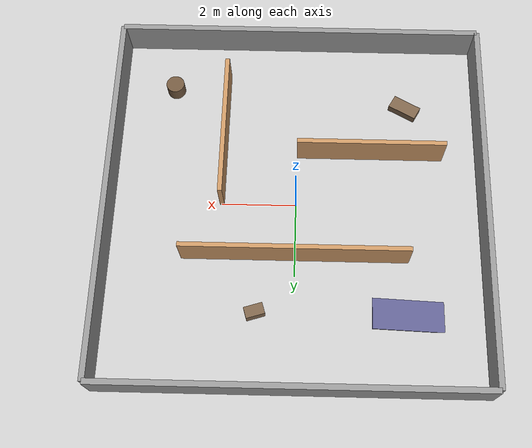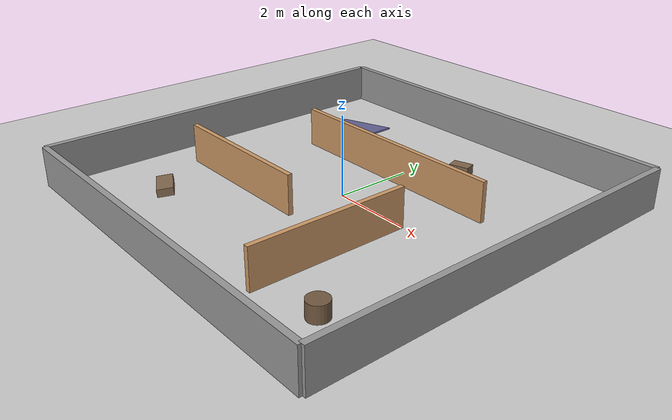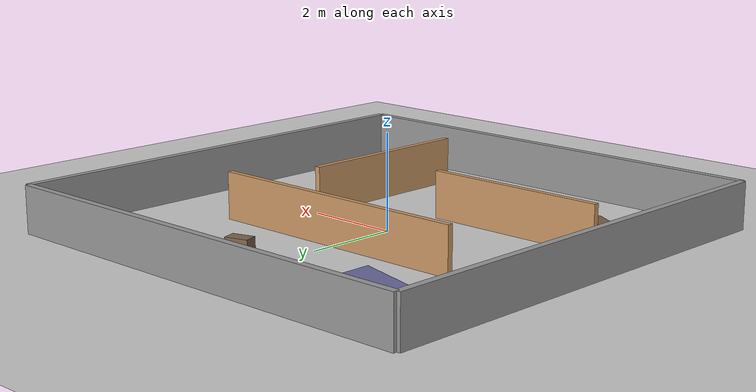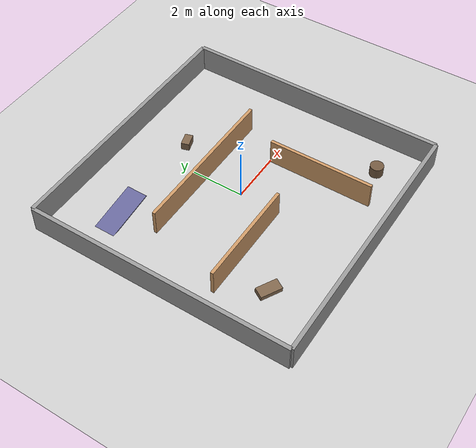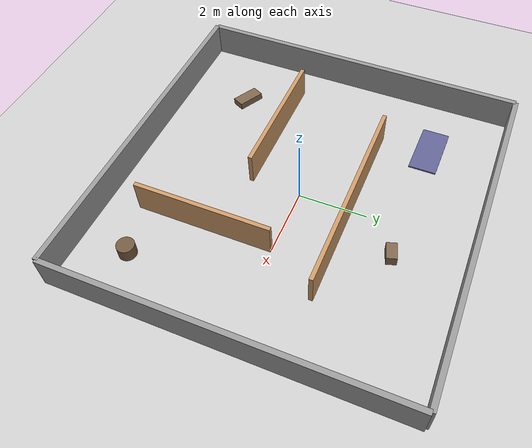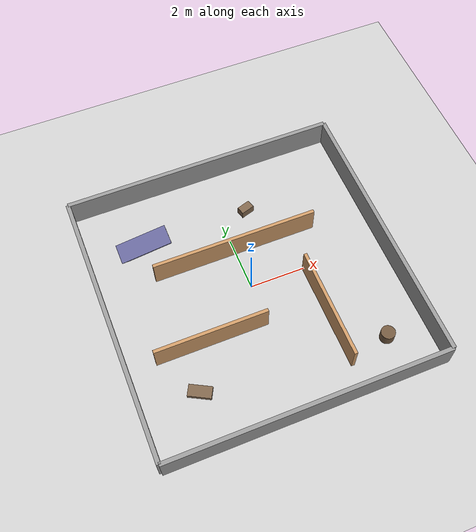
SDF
<?xml version="1.0"?>
<!--
  レスキューロボット テスト用ワールド (Gazebo Harmonic / gz sim 8)
  壁・通路・瓦礫風ブロックを配置した 10×10 m 屋内フィールド

  gz sim rescue_field.sdf
-->
<sdf version="1.9">
  <world name="rescue_field">

    <!-- ====== 必須 System Plugins (Gazebo Harmonic) ====== -->
    <plugin filename="gz-sim-physics-system"
            name="gz::sim::systems::Physics">
    </plugin>
    <plugin filename="gz-sim-user-commands-system"
            name="gz::sim::systems::UserCommands">
    </plugin>
    <plugin filename="gz-sim-scene-broadcaster-system"
            name="gz::sim::systems::SceneBroadcaster">
    </plugin>
        <!-- Sensors/IMU system: lidarはOGRE必須。MESA_GL_VERSION_OVERRIDE=3.3 で
          ソフトウェアレンダリング環境でも動作する。 -->
    <plugin filename="gz-sim-sensors-system"
            name="gz::sim::systems::Sensors">
       <render_engine>ogre</render_engine>
    </plugin>
    <plugin filename="gz-sim-imu-system"
            name="gz::sim::systems::Imu">
    </plugin>
    <plugin filename="gz-sim-contact-system"
            name="gz::sim::systems::Contact">
    </plugin>

    <!-- ====== Physics ====== -->
    <physics name="default_physics" type="ode">
      <max_step_size>0.004</max_step_size>
      <real_time_factor>1.0</real_time_factor>
      <real_time_update_rate>250</real_time_update_rate>
    </physics>

    <!-- ====== Scene ====== -->
    <scene>
      <ambient>0.4 0.4 0.4 1</ambient>
      <background>0.7 0.7 0.7 1</background>
      <shadows>true</shadows>
    </scene>

    <!-- ====== Lights ====== -->
    <light name="sun" type="directional">
      <cast_shadows>true</cast_shadows>
      <pose>0 0 10 0 0 0</pose>
      <diffuse>0.8 0.8 0.8 1</diffuse>
      <specular>0.2 0.2 0.2 1</specular>
      <attenuation>
        <range>1000</range>
        <constant>0.9</constant>
        <linear>0.01</linear>
        <quadratic>0.001</quadratic>
      </attenuation>
      <direction>-0.5 0.1 -0.9</direction>
    </light>

    <!-- ====== Ground Plane ====== -->
    <model name="ground_plane">
      <static>true</static>
      <link name="link">
        <collision name="collision">
          <geometry>
            <plane>
              <normal>0 0 1</normal>
              <size>100 100</size>
            </plane>
          </geometry>
          <surface>
            <friction>
              <ode>
                <mu>100</mu>
                <mu2>50</mu2>
              </ode>
            </friction>
          </surface>
        </collision>
        <visual name="visual">
          <geometry>
            <plane>
              <normal>0 0 1</normal>
              <size>100 100</size>
            </plane>
          </geometry>
          <material>
            <ambient>0.8 0.8 0.8 1</ambient>
            <diffuse>0.8 0.8 0.8 1</diffuse>
            <specular>0.8 0.8 0.8 1</specular>
          </material>
        </visual>
      </link>
    </model>

    <!-- ====== 外壁 ====== -->
    <!-- 北壁 -->
    <model name="wall_north">
      <static>true</static>
      <pose>0 5 0.5 0 0 0</pose>
      <link name="link">
        <collision name="collision">
          <geometry><box><size>10 0.15 1.0</size></box></geometry>
        </collision>
        <visual name="visual">
          <geometry><box><size>10 0.15 1.0</size></box></geometry>
          <material>
            <ambient>0.5 0.5 0.5 1</ambient>
            <diffuse>0.6 0.6 0.6 1</diffuse>
          </material>
        </visual>
      </link>
    </model>

    <!-- 南壁 -->
    <model name="wall_south">
      <static>true</static>
      <pose>0 -5 0.5 0 0 0</pose>
      <link name="link">
        <collision name="collision">
          <geometry><box><size>10 0.15 1.0</size></box></geometry>
        </collision>
        <visual name="visual">
          <geometry><box><size>10 0.15 1.0</size></box></geometry>
          <material>
            <ambient>0.5 0.5 0.5 1</ambient>
            <diffuse>0.6 0.6 0.6 1</diffuse>
          </material>
        </visual>
      </link>
    </model>

    <!-- 東壁 -->
    <model name="wall_east">
      <static>true</static>
      <pose>5 0 0.5 0 0 0</pose>
      <link name="link">
        <collision name="collision">
          <geometry><box><size>0.15 10 1.0</size></box></geometry>
        </collision>
        <visual name="visual">
          <geometry><box><size>0.15 10 1.0</size></box></geometry>
          <material>
            <ambient>0.5 0.5 0.5 1</ambient>
            <diffuse>0.6 0.6 0.6 1</diffuse>
          </material>
        </visual>
      </link>
    </model>

    <!-- 西壁 -->
    <model name="wall_west">
      <static>true</static>
      <pose>-5 0 0.5 0 0 0</pose>
      <link name="link">
        <collision name="collision">
          <geometry><box><size>0.15 10 1.0</size></box></geometry>
        </collision>
        <visual name="visual">
          <geometry><box><size>0.15 10 1.0</size></box></geometry>
          <material>
            <ambient>0.5 0.5 0.5 1</ambient>
            <diffuse>0.6 0.6 0.6 1</diffuse>
          </material>
        </visual>
      </link>
    </model>

    <!-- ====== 内部仕切り壁 ====== -->
    <!-- 部屋 A と B を仕切る壁（ドア開口部あり） -->
    <model name="partition_1">
      <static>true</static>
      <pose>0 1.5 0.5 0 0 0</pose>
      <link name="link">
        <collision name="collision">
          <geometry><box><size>6 0.12 1.0</size></box></geometry>
        </collision>
        <visual name="visual">
          <geometry><box><size>6 0.12 1.0</size></box></geometry>
          <material>
            <ambient>0.7 0.5 0.3 1</ambient>
            <diffuse>0.8 0.6 0.4 1</diffuse>
          </material>
        </visual>
      </link>
    </model>

    <!-- L字通路の壁 -->
    <model name="corridor_wall_1">
      <static>true</static>
      <pose>-2 -1.5 0.5 0 0 0</pose>
      <link name="link">
        <collision name="collision">
          <geometry><box><size>4 0.12 1.0</size></box></geometry>
        </collision>
        <visual name="visual">
          <geometry><box><size>4 0.12 1.0</size></box></geometry>
          <material>
            <ambient>0.7 0.5 0.3 1</ambient>
            <diffuse>0.8 0.6 0.4 1</diffuse>
          </material>
        </visual>
      </link>
    </model>

    <model name="corridor_wall_2">
      <static>true</static>
      <pose>2 -2 0.5 0 0 1.5708</pose>
      <link name="link">
        <collision name="collision">
          <geometry><box><size>4 0.12 1.0</size></box></geometry>
        </collision>
        <visual name="visual">
          <geometry><box><size>4 0.12 1.0</size></box></geometry>
          <material>
            <ambient>0.7 0.5 0.3 1</ambient>
            <diffuse>0.8 0.6 0.4 1</diffuse>
          </material>
        </visual>
      </link>
    </model>

    <!-- ====== 瓦礫風障害物 ====== -->
    <model name="debris_1">
      <static>true</static>
      <pose>1.0 3.0 0.15 0 0 0.3</pose>
      <link name="link">
        <collision name="collision">
          <geometry><box><size>0.5 0.3 0.3</size></box></geometry>
        </collision>
        <visual name="visual">
          <geometry><box><size>0.5 0.3 0.3</size></box></geometry>
          <material>
            <ambient>0.4 0.3 0.2 1</ambient>
            <diffuse>0.5 0.4 0.3 1</diffuse>
          </material>
        </visual>
      </link>
    </model>

    <model name="debris_2">
      <static>true</static>
      <pose>-3.0 -3.0 0.1 0.1 0 -0.5</pose>
      <link name="link">
        <collision name="collision">
          <geometry><box><size>0.8 0.4 0.2</size></box></geometry>
        </collision>
        <visual name="visual">
          <geometry><box><size>0.8 0.4 0.2</size></box></geometry>
          <material>
            <ambient>0.4 0.3 0.2 1</ambient>
            <diffuse>0.5 0.4 0.3 1</diffuse>
          </material>
        </visual>
      </link>
    </model>

    <model name="debris_3">
      <static>true</static>
      <pose>3.5 -3.5 0.2 0 0 0.8</pose>
      <link name="link">
        <collision name="collision">
          <geometry><cylinder><radius>0.25</radius><length>0.4</length></cylinder></geometry>
        </collision>
        <visual name="visual">
          <geometry><cylinder><radius>0.25</radius><length>0.4</length></cylinder></geometry>
          <material>
            <ambient>0.35 0.25 0.15 1</ambient>
            <diffuse>0.45 0.35 0.25 1</diffuse>
          </material>
        </visual>
      </link>
    </model>

    <!-- ====== スロープ（フリッパの動作確認用） ====== -->
    <model name="ramp">
      <static>true</static>
      <pose>-3 3 0.1 0 -0.15 0</pose>
      <link name="link">
        <collision name="collision">
          <geometry><box><size>2.0 0.8 0.04</size></box></geometry>
        </collision>
        <visual name="visual">
          <geometry><box><size>2.0 0.8 0.04</size></box></geometry>
          <material>
            <ambient>0.3 0.3 0.5 1</ambient>
            <diffuse>0.4 0.4 0.6 1</diffuse>
          </material>
        </visual>
      </link>
    </model>

  </world>
</sdf>
